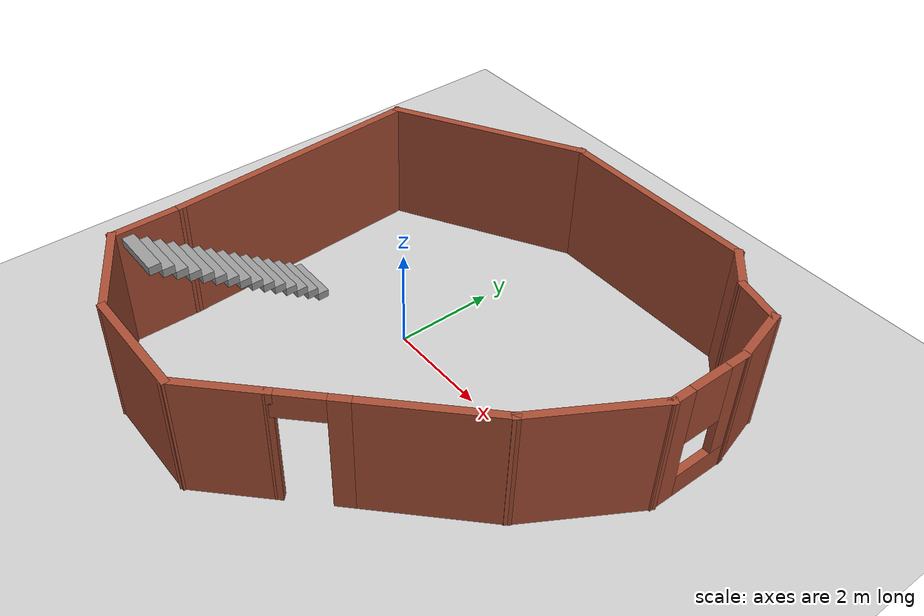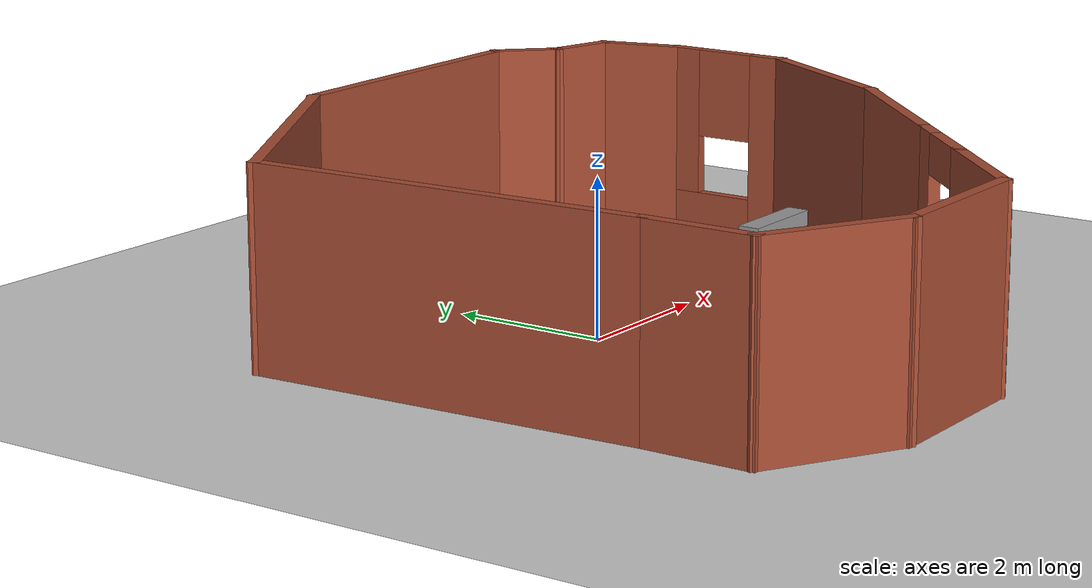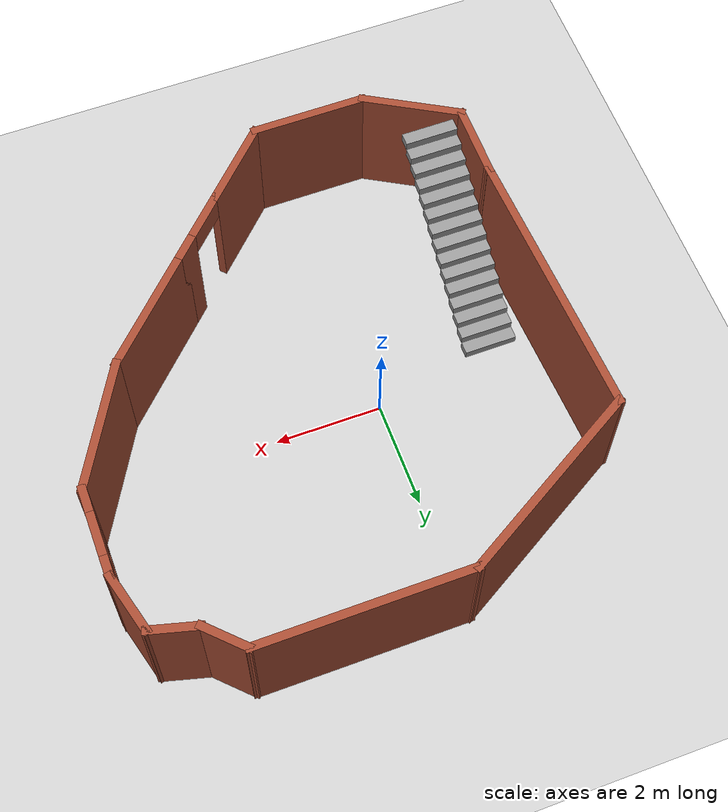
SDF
<sdf version="1.7">
 <world name="default">
  <light name="sun" type="directional">
   <pose>0 0 10 0 -0 0</pose>
   <diffuse>0.8 0.8 0.8 1</diffuse>
   <specular>0.2 0.2 0.2 1</specular>
   <attenuation>
    <range>1000</range>
    <constant>0.9</constant>
    <linear>0.01</linear>
    <quadratic>0.001</quadratic>
   </attenuation>
   <direction>-0.5 0.1 -0.9</direction>
   <spot><inner_angle>0</inner_angle><outer_angle>0</outer_angle><falloff>0</falloff></spot>
  </light>
  <model name="ground_plane">
   <static>1</static>
   <link name="link">
    <collision name="collision">
     <geometry><plane><normal>0 0 1</normal><size>100 100</size></plane></geometry>
     <surface>
      <contact><collide_bitmask>65535</collide_bitmask></contact>
      <friction><ode><mu>100</mu><mu2>50</mu2></ode></friction>
     </surface>
    </collision>
    <visual name="visual">
     <cast_shadows>0</cast_shadows>
     <geometry><plane><normal>0 0 1</normal><size>100 100</size></plane></geometry>
     <material>
      <script><uri>file://media/materials/scripts/gazebo.material</uri><name>Gazebo/Grey</name></script>
     </material>
    </visual>
   </link>
  </model>
  <gravity>0 0 -9.8</gravity>
  <magnetic_field>6e-06 2.3e-05 -4.2e-05</magnetic_field>
  <atmosphere type="adiabatic"/>
  <physics type="ode">
   <max_step_size>0.001</max_step_size>
   <real_time_factor>1</real_time_factor>
   <real_time_update_rate>1000</real_time_update_rate>
  </physics>
  <scene><ambient>0.4 0.4 0.4 1</ambient><background>0.7 0.7 0.7 1</background><shadows>1</shadows></scene>
  <audio><device>default</device></audio>
  <spherical_coordinates>
   <surface_model>EARTH_WGS84</surface_model>
   <latitude_deg>0</latitude_deg>
   <longitude_deg>0</longitude_deg>
   <elevation>0</elevation>
   <heading_deg>0</heading_deg>
  </spherical_coordinates>
  <model name="building_space">
   <pose>1.08879 -0.335586 0 0 -0 0</pose>
   <link name="Stairs_0">
    <visual name="Stairs_0_Visual_0">
     <pose>-3.47081 -0.227918 0.083333 0 -0 0</pose>
     <geometry><box><size>1 0.233333 0.166667</size></box></geometry>
     <material>
      <script><uri>file://media/materials/scripts/gazebo.material</uri><name>Gazebo/Grey</name></script>
      <ambient>1 1 1 1</ambient>
     </material>
     <meta><layer>0</layer></meta>
    </visual>
    <collision name="Stairs_0_Collision_0">
     <geometry><box><size>1 0.233333 0.166667</size></box></geometry>
     <pose>-3.47081 -0.227918 0.083333 0 -0 0</pose>
    </collision>
    <visual name="Stairs_0_Visual_1">
     <pose>-3.47081 -0.461251 0.25 0 -0 0</pose>
     <geometry><box><size>1 0.233333 0.166667</size></box></geometry>
     <material>
      <script><uri>file://media/materials/scripts/gazebo.material</uri><name>Gazebo/Grey</name></script>
      <ambient>1 1 1 1</ambient>
     </material>
     <meta><layer>0</layer></meta>
    </visual>
    <collision name="Stairs_0_Collision_1">
     <geometry><box><size>1 0.233333 0.166667</size></box></geometry>
     <pose>-3.47081 -0.461251 0.25 0 -0 0</pose>
    </collision>
    <visual name="Stairs_0_Visual_2">
     <pose>-3.47081 -0.694584 0.416667 0 -0 0</pose>
     <geometry><box><size>1 0.233333 0.166667</size></box></geometry>
     <material>
      <script><uri>file://media/materials/scripts/gazebo.material</uri><name>Gazebo/Grey</name></script>
      <ambient>1 1 1 1</ambient>
     </material>
     <meta><layer>0</layer></meta>
    </visual>
    <collision name="Stairs_0_Collision_2">
     <geometry><box><size>1 0.233333 0.166667</size></box></geometry>
     <pose>-3.47081 -0.694584 0.416667 0 -0 0</pose>
    </collision>
    <visual name="Stairs_0_Visual_3">
     <pose>-3.47081 -0.927918 0.583333 0 -0 0</pose>
     <geometry><box><size>1 0.233333 0.166667</size></box></geometry>
     <material>
      <script><uri>file://media/materials/scripts/gazebo.material</uri><name>Gazebo/Grey</name></script>
      <ambient>1 1 1 1</ambient>
     </material>
     <meta><layer>0</layer></meta>
    </visual>
    <collision name="Stairs_0_Collision_3">
     <geometry><box><size>1 0.233333 0.166667</size></box></geometry>
     <pose>-3.47081 -0.927918 0.583333 0 -0 0</pose>
    </collision>
    <visual name="Stairs_0_Visual_4">
     <pose>-3.47081 -1.16125 0.75 0 -0 0</pose>
     <geometry><box><size>1 0.233333 0.166667</size></box></geometry>
     <material>
      <script><uri>file://media/materials/scripts/gazebo.material</uri><name>Gazebo/Grey</name></script>
      <ambient>1 1 1 1</ambient>
     </material>
     <meta><layer>0</layer></meta>
    </visual>
    <collision name="Stairs_0_Collision_4">
     <geometry><box><size>1 0.233333 0.166667</size></box></geometry>
     <pose>-3.47081 -1.16125 0.75 0 -0 0</pose>
    </collision>
    <visual name="Stairs_0_Visual_5">
     <pose>-3.47081 -1.39458 0.916667 0 -0 0</pose>
     <geometry><box><size>1 0.233333 0.166667</size></box></geometry>
     <material>
      <script><uri>file://media/materials/scripts/gazebo.material</uri><name>Gazebo/Grey</name></script>
      <ambient>1 1 1 1</ambient>
     </material>
     <meta><layer>0</layer></meta>
    </visual>
    <collision name="Stairs_0_Collision_5">
     <geometry><box><size>1 0.233333 0.166667</size></box></geometry>
     <pose>-3.47081 -1.39458 0.916667 0 -0 0</pose>
    </collision>
    <visual name="Stairs_0_Visual_6">
     <pose>-3.47081 -1.62792 1.08333 0 -0 0</pose>
     <geometry><box><size>1 0.233333 0.166667</size></box></geometry>
     <material>
      <script><uri>file://media/materials/scripts/gazebo.material</uri><name>Gazebo/Grey</name></script>
      <ambient>1 1 1 1</ambient>
     </material>
     <meta><layer>0</layer></meta>
    </visual>
    <collision name="Stairs_0_Collision_6">
     <geometry><box><size>1 0.233333 0.166667</size></box></geometry>
     <pose>-3.47081 -1.62792 1.08333 0 -0 0</pose>
    </collision>
    <visual name="Stairs_0_Visual_7">
     <pose>-3.47081 -1.86125 1.25 0 -0 0</pose>
     <geometry><box><size>1 0.233333 0.166667</size></box></geometry>
     <material>
      <script><uri>file://media/materials/scripts/gazebo.material</uri><name>Gazebo/Grey</name></script>
      <ambient>1 1 1 1</ambient>
     </material>
     <meta><layer>0</layer></meta>
    </visual>
    <collision name="Stairs_0_Collision_7">
     <geometry><box><size>1 0.233333 0.166667</size></box></geometry>
     <pose>-3.47081 -1.86125 1.25 0 -0 0</pose>
    </collision>
    <visual name="Stairs_0_Visual_8">
     <pose>-3.47081 -2.09458 1.41667 0 -0 0</pose>
     <geometry><box><size>1 0.233333 0.166667</size></box></geometry>
     <material>
      <script><uri>file://media/materials/scripts/gazebo.material</uri><name>Gazebo/Grey</name></script>
      <ambient>1 1 1 1</ambient>
     </material>
     <meta><layer>0</layer></meta>
    </visual>
    <collision name="Stairs_0_Collision_8">
     <geometry><box><size>1 0.233333 0.166667</size></box></geometry>
     <pose>-3.47081 -2.09458 1.41667 0 -0 0</pose>
    </collision>
    <visual name="Stairs_0_Visual_9">
     <pose>-3.47081 -2.32792 1.58333 0 -0 0</pose>
     <geometry><box><size>1 0.233333 0.166667</size></box></geometry>
     <material>
      <script><uri>file://media/materials/scripts/gazebo.material</uri><name>Gazebo/Grey</name></script>
      <ambient>1 1 1 1</ambient>
     </material>
     <meta><layer>0</layer></meta>
    </visual>
    <collision name="Stairs_0_Collision_9">
     <geometry><box><size>1 0.233333 0.166667</size></box></geometry>
     <pose>-3.47081 -2.32792 1.58333 0 -0 0</pose>
    </collision>
    <visual name="Stairs_0_Visual_10">
     <pose>-3.47081 -2.56125 1.75 0 -0 0</pose>
     <geometry><box><size>1 0.233333 0.166667</size></box></geometry>
     <material>
      <script><uri>file://media/materials/scripts/gazebo.material</uri><name>Gazebo/Grey</name></script>
      <ambient>1 1 1 1</ambient>
     </material>
     <meta><layer>0</layer></meta>
    </visual>
    <collision name="Stairs_0_Collision_10">
     <geometry><box><size>1 0.233333 0.166667</size></box></geometry>
     <pose>-3.47081 -2.56125 1.75 0 -0 0</pose>
    </collision>
    <visual name="Stairs_0_Visual_11">
     <pose>-3.47081 -2.79459 1.91667 0 -0 0</pose>
     <geometry><box><size>1 0.233333 0.166667</size></box></geometry>
     <material>
      <script><uri>file://media/materials/scripts/gazebo.material</uri><name>Gazebo/Grey</name></script>
      <ambient>1 1 1 1</ambient>
     </material>
     <meta><layer>0</layer></meta>
    </visual>
    <collision name="Stairs_0_Collision_11">
     <geometry><box><size>1 0.233333 0.166667</size></box></geometry>
     <pose>-3.47081 -2.79459 1.91667 0 -0 0</pose>
    </collision>
    <visual name="Stairs_0_Visual_12">
     <pose>-3.47081 -3.02792 2.08333 0 -0 0</pose>
     <geometry><box><size>1 0.233333 0.166667</size></box></geometry>
     <material>
      <script><uri>file://media/materials/scripts/gazebo.material</uri><name>Gazebo/Grey</name></script>
      <ambient>1 1 1 1</ambient>
     </material>
     <meta><layer>0</layer></meta>
    </visual>
    <collision name="Stairs_0_Collision_12">
     <geometry><box><size>1 0.233333 0.166667</size></box></geometry>
     <pose>-3.47081 -3.02792 2.08333 0 -0 0</pose>
    </collision>
    <visual name="Stairs_0_Visual_13">
     <pose>-3.47081 -3.26125 2.25 0 -0 0</pose>
     <geometry><box><size>1 0.233333 0.166667</size></box></geometry>
     <material>
      <script><uri>file://media/materials/scripts/gazebo.material</uri><name>Gazebo/Grey</name></script>
      <ambient>1 1 1 1</ambient>
     </material>
     <meta><layer>0</layer></meta>
    </visual>
    <collision name="Stairs_0_Collision_13">
     <geometry><box><size>1 0.233333 0.166667</size></box></geometry>
     <pose>-3.47081 -3.26125 2.25 0 -0 0</pose>
    </collision>
    <visual name="Stairs_0_Visual_14">
     <pose>-3.47081 -3.49458 2.41667 0 -0 0</pose>
     <geometry><box><size>1 0.233333 0.166667</size></box></geometry>
     <material>
      <script><uri>file://media/materials/scripts/gazebo.material</uri><name>Gazebo/Grey</name></script>
      <ambient>1 1 1 1</ambient>
     </material>
     <meta><layer>0</layer></meta>
    </visual>
    <collision name="Stairs_0_Collision_14">
     <geometry><box><size>1 0.233333 0.166667</size></box></geometry>
     <pose>-3.47081 -3.49458 2.41667 0 -0 0</pose>
    </collision>
   </link>
   <link name="Wall_0">
    <collision name="Wall_0_Collision">
     <geometry><box><size>1.5 0.15 2.5</size></box></geometry>
     <pose>0 0 1.25 0 -0 0</pose>
    </collision>
    <visual name="Wall_0_Visual">
     <pose>0 0 1.25 0 -0 0</pose>
     <geometry><box><size>1.5 0.15 2.5</size></box></geometry>
     <material>
      <script><uri>file://media/materials/scripts/gazebo.material</uri><name>Gazebo/Bricks</name></script>
      <ambient>1 1 1 1</ambient>
     </material>
     <meta><layer>0</layer></meta>
    </visual>
    <pose>-4.17932 -3.03319 0 0 -0 -1.5708</pose>
   </link>
   <link name="Wall_1">
    <collision name="Wall_1_Collision">
     <geometry><box><size>2 0.15 2.5</size></box></geometry>
     <pose>0 0 1.25 0 -0 0</pose>
    </collision>
    <visual name="Wall_1_Visual">
     <pose>0 0 1.25 0 -0 0</pose>
     <geometry><box><size>2 0.15 2.5</size></box></geometry>
     <material>
      <script><uri>file://media/materials/scripts/gazebo.material</uri><name>Gazebo/Bricks</name></script>
      <ambient>1 1 1 1</ambient>
     </material>
     <meta><layer>0</layer></meta>
    </visual>
    <pose>-3.37825 -4.17069 0 0 -0 -0.523599</pose>
   </link>
   <link name="Wall_10">
    <collision name="Wall_10_Collision">
     <geometry><box><size>1 0.15 2.5</size></box></geometry>
     <pose>0 0 1.25 0 -0 0</pose>
    </collision>
    <visual name="Wall_10_Visual">
     <pose>0 0 1.25 0 -0 0</pose>
     <geometry><box><size>1 0.15 2.5</size></box></geometry>
     <material>
      <script><uri>file://media/materials/scripts/gazebo.material</uri><name>Gazebo/Bricks</name></script>
      <ambient>1 1 1 1</ambient>
     </material>
     <meta><layer>0</layer></meta>
    </visual>
    <pose>3.03923 4.33267 0 0 -0 2.35619</pose>
   </link>
   <link name="Wall_11">
    <collision name="Wall_11_Collision">
     <geometry><box><size>4 0.15 2.5</size></box></geometry>
     <pose>0 0 1.25 0 -0 0</pose>
    </collision>
    <visual name="Wall_11_Visual">
     <pose>0 0 1.25 0 -0 0</pose>
     <geometry><box><size>4 0.15 2.5</size></box></geometry>
     <material>
      <script><uri>file://media/materials/scripts/gazebo.material</uri><name>Gazebo/Bricks</name></script>
      <ambient>1 1 1 1</ambient>
     </material>
     <meta><layer>0</layer></meta>
    </visual>
    <pose>0.81371 4.63319 0 0 -0 3.14159</pose>
   </link>
   <link name="Wall_12">
    <collision name="Wall_12_Collision">
     <geometry><box><size>4 0.15 2.5</size></box></geometry>
     <pose>0 0 1.25 0 -0 0</pose>
    </collision>
    <visual name="Wall_12_Visual">
     <pose>0 0 1.25 0 -0 0</pose>
     <geometry><box><size>4 0.15 2.5</size></box></geometry>
     <material>
      <script><uri>file://media/materials/scripts/gazebo.material</uri><name>Gazebo/Bricks</name></script>
      <ambient>1 1 1 1</ambient>
     </material>
     <meta><layer>0</layer></meta>
    </visual>
    <pose>-2.77839 3.67069 0 0 -0 -2.61799</pose>
   </link>
   <link name="Wall_13">
    <collision name="Wall_13_Collision">
     <geometry><box><size>5.22337 0.15 2.5</size></box></geometry>
     <pose>0 0 1.25 0 -0 0</pose>
    </collision>
    <visual name="Wall_13_Visual">
     <pose>0 0 1.25 0 -0 0</pose>
     <geometry><box><size>5.22337 0.15 2.5</size></box></geometry>
     <material>
      <script><uri>file://media/materials/scripts/gazebo.material</uri><name>Gazebo/Bricks</name></script>
      <ambient>1 1 1 1</ambient>
     </material>
     <meta><layer>0</layer></meta>
    </visual>
    <pose>-4.31241 0.175 0 0 -0 -1.51831</pose>
   </link>
   <link name="Wall_2">
    <collision name="Wall_2_Collision">
     <geometry><box><size>2.25 0.15 2.5</size></box></geometry>
     <pose>0 0 1.25 0 -0 0</pose>
    </collision>
    <visual name="Wall_2_Visual">
     <pose>0 0 1.25 0 -0 0</pose>
     <geometry><box><size>2.25 0.15 2.5</size></box></geometry>
     <material>
      <script><uri>file://media/materials/scripts/gazebo.material</uri><name>Gazebo/Bricks</name></script>
      <ambient>0.435294 0.796078 0.67451 1</ambient>
     </material>
     <meta><layer>0</layer></meta>
    </visual>
    <pose>-1.52718 -4.63319 0 0 -0 0</pose>
   </link>
   <link name="Wall_3">
    <collision name="Wall_3_Collision">
     <geometry><box><size>1.75 0.15 2.5</size></box></geometry>
     <pose>0 0 1.25 0 -0 0</pose>
    </collision>
    <visual name="Wall_3_Visual">
     <pose>0 0 1.25 0 -0 0</pose>
     <geometry><box><size>1.75 0.15 2.5</size></box></geometry>
     <material>
      <script><uri>file://media/materials/scripts/gazebo.material</uri><name>Gazebo/Bricks</name></script>
      <ambient>1 1 1 1</ambient>
     </material>
     <meta><layer>0</layer></meta>
    </visual>
    <pose>0.088508 -4.0675 0 0 -0 0.785398</pose>
   </link>
   <link name="Wall_4">
    <pose>1.13149 -3.02452 0 0 -0 0.785398</pose>
    <visual name="Wall_4_Visual_0">
     <pose>-0.711863 0 1.25 0 -0 0</pose>
     <geometry><box><size>0.076274 0.15 2.5</size></box></geometry>
     <material>
      <script><uri>file://media/materials/scripts/gazebo.material</uri><name>Gazebo/Bricks</name></script>
      <ambient>1 1 1 1</ambient>
     </material>
     <meta><layer>0</layer></meta>
    </visual>
    <collision name="Wall_4_Collision_0">
     <geometry><box><size>0.076274 0.15 2.5</size></box></geometry>
     <pose>-0.711863 0 1.25 0 -0 0</pose>
    </collision>
    <visual name="Wall_4_Visual_1">
     <pose>0.488137 0 1.25 0 -0 0</pose>
     <geometry><box><size>0.523726 0.15 2.5</size></box></geometry>
     <material>
      <script><uri>file://media/materials/scripts/gazebo.material</uri><name>Gazebo/Bricks</name></script>
      <ambient>1 1 1 1</ambient>
     </material>
     <meta><layer>0</layer></meta>
    </visual>
    <collision name="Wall_4_Collision_1">
     <geometry><box><size>0.523726 0.15 2.5</size></box></geometry>
     <pose>0.488137 0 1.25 0 -0 0</pose>
    </collision>
    <visual name="Wall_4_Visual_2">
     <pose>-0.223726 0 2.25 0 -0 0</pose>
     <geometry><box><size>0.9 0.15 0.5</size></box></geometry>
     <material>
      <script><uri>file://media/materials/scripts/gazebo.material</uri><name>Gazebo/Bricks</name></script>
      <ambient>1 1 1 1</ambient>
     </material>
     <meta><layer>0</layer></meta>
    </visual>
    <collision name="Wall_4_Collision_2">
     <geometry><box><size>0.9 0.15 0.5</size></box></geometry>
     <pose>-0.223726 0 2.25 0 -0 0</pose>
    </collision>
   </link>
   <link name="Wall_5">
    <collision name="Wall_5_Collision">
     <geometry><box><size>2.5 0.15 2.5</size></box></geometry>
     <pose>0 0 1.25 0 -0 0</pose>
    </collision>
    <visual name="Wall_5_Visual">
     <pose>0 0 1.25 0 -0 0</pose>
     <geometry><box><size>2.5 0.15 2.5</size></box></geometry>
     <material>
      <script><uri>file://media/materials/scripts/gazebo.material</uri><name>Gazebo/Bricks</name></script>
      <ambient>0.435294 0.796078 0.67451 1</ambient>
     </material>
     <meta><layer>0</layer></meta>
    </visual>
    <pose>2.43964 -1.71637 0 0 -0 0.785398</pose>
   </link>
   <link name="Wall_6">
    <collision name="Wall_6_Collision">
     <geometry><box><size>2.5 0.15 2.5</size></box></geometry>
     <pose>0 0 1.25 0 -0 0</pose>
    </collision>
    <visual name="Wall_6_Visual">
     <pose>0 0 1.25 0 -0 0</pose>
     <geometry><box><size>2.5 0.15 2.5</size></box></geometry>
     <material>
      <script><uri>file://media/materials/scripts/gazebo.material</uri><name>Gazebo/Bricks</name></script>
      <ambient>1 1 1 1</ambient>
     </material>
     <meta><layer>0</layer></meta>
    </visual>
    <pose>3.85799 0.132055 0 0 -0 1.0472</pose>
   </link>
   <link name="Wall_7">
    <pose>4.44549 1.94964 0 0 -0 1.5708</pose>
    <visual name="Wall_7_Visual_0">
     <pose>-0.623103 0 1.25 0 -0 0</pose>
     <geometry><box><size>0.503795 0.15 2.5</size></box></geometry>
     <material>
      <script><uri>file://media/materials/scripts/gazebo.material</uri><name>Gazebo/Bricks</name></script>
      <ambient>1 1 1 1</ambient>
     </material>
     <meta><layer>0</layer></meta>
    </visual>
    <collision name="Wall_7_Collision_0">
     <geometry><box><size>0.503795 0.15 2.5</size></box></geometry>
     <pose>-0.623103 0 1.25 0 -0 0</pose>
    </collision>
    <visual name="Wall_7_Visual_1">
     <pose>0.251897 0 0.25 0 -0 0</pose>
     <geometry><box><size>1.24621 0.15 0.5</size></box></geometry>
     <material>
      <script><uri>file://media/materials/scripts/gazebo.material</uri><name>Gazebo/Bricks</name></script>
      <ambient>1 1 1 1</ambient>
     </material>
     <meta><layer>0</layer></meta>
    </visual>
    <collision name="Wall_7_Collision_1">
     <geometry><box><size>1.24621 0.15 0.5</size></box></geometry>
     <pose>0.251897 0 0.25 0 -0 0</pose>
    </collision>
    <visual name="Wall_7_Visual_2">
     <pose>0.651897 0 1.5 0 -0 0</pose>
     <geometry><box><size>0.446205 0.15 2</size></box></geometry>
     <material>
      <script><uri>file://media/materials/scripts/gazebo.material</uri><name>Gazebo/Bricks</name></script>
      <ambient>1 1 1 1</ambient>
     </material>
     <meta><layer>0</layer></meta>
    </visual>
    <collision name="Wall_7_Collision_2">
     <geometry><box><size>0.446205 0.15 2</size></box></geometry>
     <pose>0.651897 0 1.5 0 -0 0</pose>
    </collision>
    <visual name="Wall_7_Visual_3">
     <pose>0.028795 0 1.9 0 -0 0</pose>
     <geometry><box><size>0.8 0.15 1.2</size></box></geometry>
     <material>
      <script><uri>file://media/materials/scripts/gazebo.material</uri><name>Gazebo/Bricks</name></script>
      <ambient>1 1 1 1</ambient>
     </material>
     <meta><layer>0</layer></meta>
    </visual>
    <collision name="Wall_7_Collision_3">
     <geometry><box><size>0.8 0.15 1.2</size></box></geometry>
     <pose>0.028795 0 1.9 0 -0 0</pose>
    </collision>
   </link>
   <link name="Wall_8">
    <collision name="Wall_8_Collision">
     <geometry><box><size>1.25 0.15 2.5</size></box></geometry>
     <pose>0 0 1.25 0 -0 0</pose>
    </collision>
    <visual name="Wall_8_Visual">
     <pose>0 0 1.25 0 -0 0</pose>
     <geometry><box><size>1.25 0.15 2.5</size></box></geometry>
     <material>
      <script><uri>file://media/materials/scripts/gazebo.material</uri><name>Gazebo/Bricks</name></script>
      <ambient>0.435294 0.796078 0.67451 1</ambient>
     </material>
     <meta><layer>0</layer></meta>
    </visual>
    <pose>4.30314 3.2809 0 0 -0 1.8326</pose>
   </link>
   <link name="Wall_9">
    <collision name="Wall_9_Collision">
     <geometry><box><size>1 0.15 2.5</size></box></geometry>
     <pose>0 0 1.25 0 -0 0</pose>
    </collision>
    <visual name="Wall_9_Visual">
     <pose>0 0 1.25 0 -0 0</pose>
     <geometry><box><size>1 0.15 2.5</size></box></geometry>
     <material>
      <script><uri>file://media/materials/scripts/gazebo.material</uri><name>Gazebo/Bricks</name></script>
      <ambient>0.435294 0.796078 0.67451 1</ambient>
     </material>
     <meta><layer>0</layer></meta>
    </visual>
    <pose>3.75027 3.92215 0 0 -0 2.87979</pose>
   </link>
   <static>1</static>
  </model>
 </world>
</sdf>
